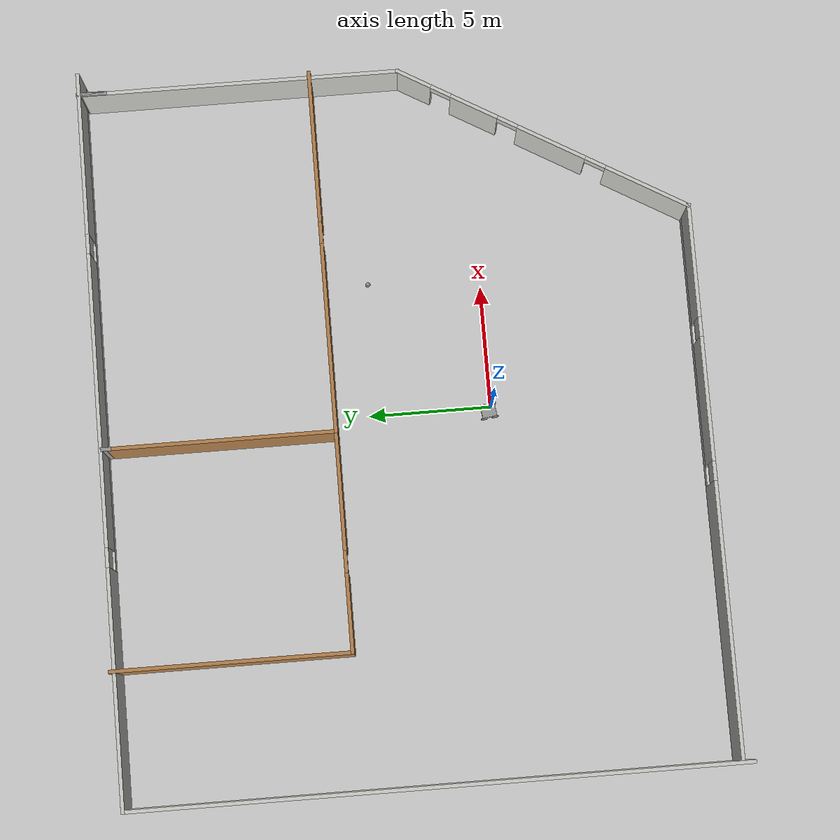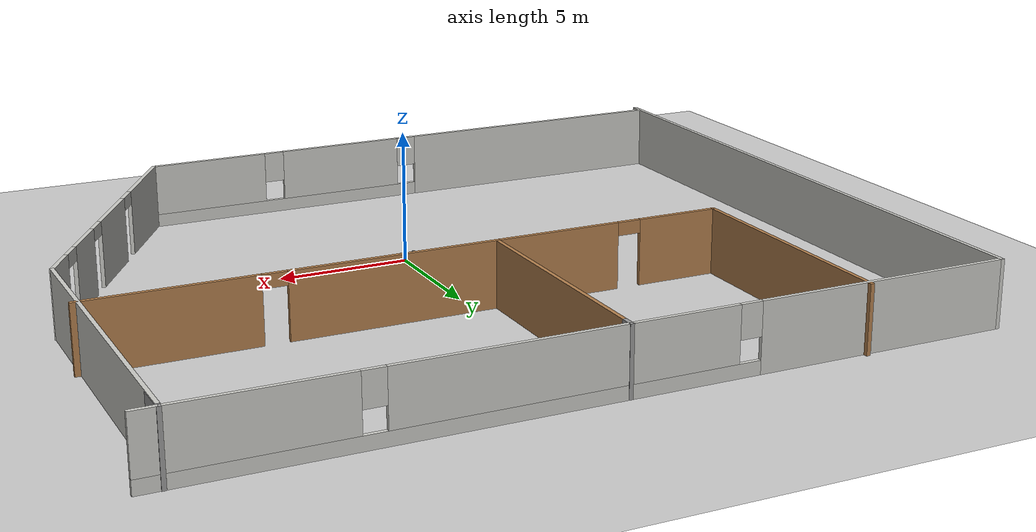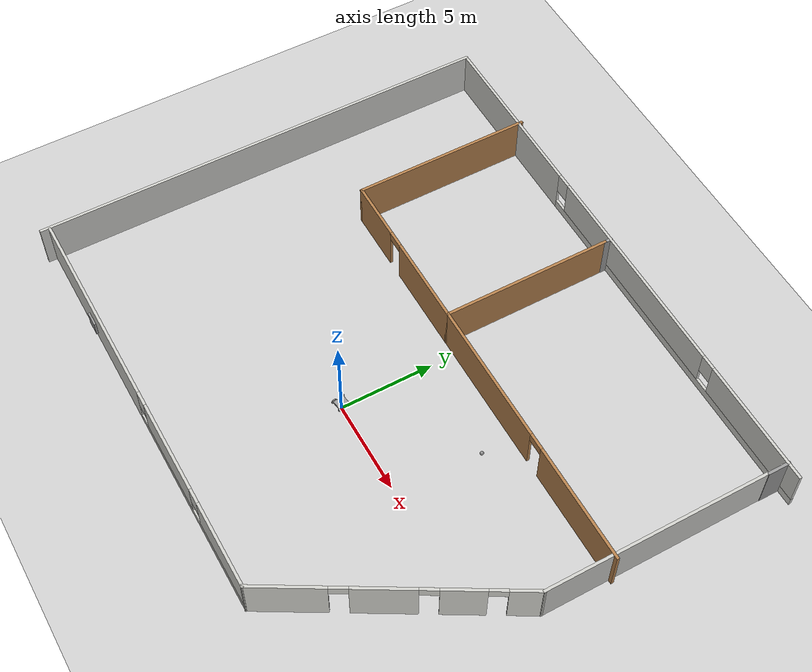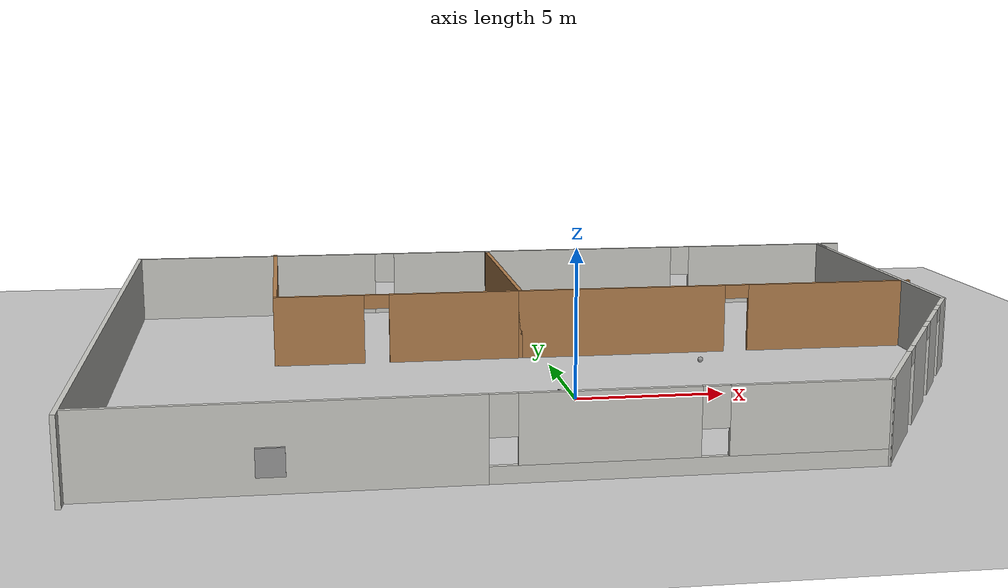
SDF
<sdf version="1.6">
 <world name="default">
  <plugin name="welcomeMessage" filename="libwelcome_message.so"/>
  <light name="sun" type="directional">
   <pose>0 0 10 0 -0 0</pose>
   <diffuse>0.8 0.8 0.8 1</diffuse>
   <specular>0.2 0.2 0.2 1</specular>
   <attenuation>
    <range>1000</range>
    <constant>0.9</constant>
    <linear>0.01</linear>
    <quadratic>0.001</quadratic>
   </attenuation>
   <direction>-0.5 0.1 -0.9</direction>
  </light>
  <model name="ground_plane">
   <static>1</static>
   <link name="link">
    <collision name="collision">
     <geometry><plane><normal>0 0 1</normal><size>100 100</size></plane></geometry>
     <surface><friction><ode><mu>100</mu><mu2>50</mu2></ode></friction></surface>
    </collision>
    <visual name="visual">
     <cast_shadows>0</cast_shadows>
     <geometry><plane><normal>0 0 1</normal><size>100 100</size></plane></geometry>
     <material>
      <script><uri>file://media/materials/scripts/gazebo.material</uri><name>Gazebo/Grey</name></script>
     </material>
    </visual>
   </link>
  </model>
  <gravity>0 0 -9.8</gravity>
  <magnetic_field>6e-06 2.3e-05 -4.2e-05</magnetic_field>
  <atmosphere type="adiabatic"/>
  <physics name="default_physics" default="0" type="ode">
   <max_step_size>0.001</max_step_size>
   <real_time_factor>1</real_time_factor>
   <real_time_update_rate>1000</real_time_update_rate>
  </physics>
  <scene><ambient>0.4 0.4 0.4 1</ambient><background>0.7 0.7 0.7 1</background><shadows>1</shadows></scene>
  <spherical_coordinates>
   <surface_model>EARTH_WGS84</surface_model>
   <latitude_deg>0</latitude_deg>
   <longitude_deg>0</longitude_deg>
   <elevation>0</elevation>
   <heading_deg>0</heading_deg>
  </spherical_coordinates>
  <model name="Building">
   <pose>-0.270887 3.4655 0 0 -0 0</pose>
   <link name="Wall_0">
    <pose>0 12.3455 0 0 -0 0</pose>
    <visual name="Wall_0_Visual_0">
     <pose>-10.1536 0 1.25 0 -0 0</pose>
     <geometry><box><size>9.69271 0.15 2.5</size></box></geometry>
     <material>
      <script><uri>file://media/materials/scripts/gazebo.material</uri><name>Gazebo/CeilingTiled</name></script>
      <ambient>1 1 1 1</ambient>
     </material>
     <meta><layer>0</layer></meta>
    </visual>
    <collision name="Wall_0_Collision_0">
     <geometry><box><size>9.69271 0.15 2.5</size></box></geometry>
     <pose>-10.1536 0 1.25 0 -0 0</pose>
    </collision>
    <visual name="Wall_0_Visual_1">
     <pose>4.84635 0 0.25 0 -0 0</pose>
     <geometry><box><size>20.3073 0.15 0.5</size></box></geometry>
     <material>
      <script><uri>file://media/materials/scripts/gazebo.material</uri><name>Gazebo/CeilingTiled</name></script>
      <ambient>1 1 1 1</ambient>
     </material>
     <meta><layer>0</layer></meta>
    </visual>
    <collision name="Wall_0_Collision_1">
     <geometry><box><size>20.3073 0.15 0.5</size></box></geometry>
     <pose>4.84635 0 0.25 0 -0 0</pose>
    </collision>
    <visual name="Wall_0_Visual_2">
     <pose>1.475 0 1.5 0 -0 0</pose>
     <geometry><box><size>11.9646 0.15 2</size></box></geometry>
     <material>
      <script><uri>file://media/materials/scripts/gazebo.material</uri><name>Gazebo/CeilingTiled</name></script>
      <ambient>1 1 1 1</ambient>
     </material>
     <meta><layer>0</layer></meta>
    </visual>
    <collision name="Wall_0_Collision_2">
     <geometry><box><size>11.9646 0.15 2</size></box></geometry>
     <pose>1.475 0 1.5 0 -0 0</pose>
    </collision>
    <visual name="Wall_0_Visual_3">
     <pose>11.6286 0 1.5 0 -0 0</pose>
     <geometry><box><size>6.74271 0.15 2</size></box></geometry>
     <material>
      <script><uri>file://media/materials/scripts/gazebo.material</uri><name>Gazebo/CeilingTiled</name></script>
      <ambient>1 1 1 1</ambient>
     </material>
     <meta><layer>0</layer></meta>
    </visual>
    <collision name="Wall_0_Collision_3">
     <geometry><box><size>6.74271 0.15 2</size></box></geometry>
     <pose>11.6286 0 1.5 0 -0 0</pose>
    </collision>
    <visual name="Wall_0_Visual_4">
     <pose>-4.9073 0 1.9 0 -0 0</pose>
     <geometry><box><size>0.8 0.15 1.2</size></box></geometry>
     <material>
      <script><uri>file://media/materials/scripts/gazebo.material</uri><name>Gazebo/CeilingTiled</name></script>
      <ambient>1 1 1 1</ambient>
     </material>
     <meta><layer>0</layer></meta>
    </visual>
    <collision name="Wall_0_Collision_4">
     <geometry><box><size>0.8 0.15 1.2</size></box></geometry>
     <pose>-4.9073 0 1.9 0 -0 0</pose>
    </collision>
    <visual name="Wall_0_Visual_5">
     <pose>7.85729 0 1.9 0 -0 0</pose>
     <geometry><box><size>0.8 0.15 1.2</size></box></geometry>
     <material>
      <script><uri>file://media/materials/scripts/gazebo.material</uri><name>Gazebo/CeilingTiled</name></script>
      <ambient>1 1 1 1</ambient>
     </material>
     <meta><layer>0</layer></meta>
    </visual>
    <collision name="Wall_0_Collision_5">
     <geometry><box><size>0.8 0.15 1.2</size></box></geometry>
     <pose>7.85729 0 1.9 0 -0 0</pose>
    </collision>
   </link>
   <link name="Wall_10">
    <collision name="Wall_10_Collision">
     <geometry><box><size>9.75 0.15 2.5</size></box></geometry>
     <pose>0 0 1.25 0 -0 0</pose>
    </collision>
    <visual name="Wall_10_Visual">
     <pose>0 0 1.25 0 -0 0</pose>
     <geometry><box><size>9.75 0.15 2.5</size></box></geometry>
     <material>
      <script><uri>file://media/materials/scripts/gazebo.material</uri><name>Gazebo/Wood</name></script>
      <ambient>1 1 1 1</ambient>
     </material>
     <meta><layer>0</layer></meta>
    </visual>
    <pose>-9.42075 7.70449 0 0 0 -1.5708</pose>
   </link>
   <link name="Wall_11">
    <pose>-4.99575 2.90449 0 0 -0 0</pose>
    <visual name="Wall_11_Visual_0">
     <pose>-2.88665 0 1.25 0 -0 0</pose>
     <geometry><box><size>3.22669 0.15 2.5</size></box></geometry>
     <material>
      <script><uri>file://media/materials/scripts/gazebo.material</uri><name>Gazebo/Wood</name></script>
      <ambient>1 1 1 1</ambient>
     </material>
     <meta><layer>0</layer></meta>
    </visual>
    <collision name="Wall_11_Collision_0">
     <geometry><box><size>3.22669 0.15 2.5</size></box></geometry>
     <pose>-2.88665 0 1.25 0 -0 0</pose>
    </collision>
    <visual name="Wall_11_Visual_1">
     <pose>2.06335 0 1.25 0 -0 0</pose>
     <geometry><box><size>4.87331 0.15 2.5</size></box></geometry>
     <material>
      <script><uri>file://media/materials/scripts/gazebo.material</uri><name>Gazebo/Wood</name></script>
      <ambient>1 1 1 1</ambient>
     </material>
     <meta><layer>0</layer></meta>
    </visual>
    <collision name="Wall_11_Collision_1">
     <geometry><box><size>4.87331 0.15 2.5</size></box></geometry>
     <pose>2.06335 0 1.25 0 -0 0</pose>
    </collision>
    <visual name="Wall_11_Visual_2">
     <pose>-0.823305 0 2.25 0 -0 0</pose>
     <geometry><box><size>0.9 0.15 0.5</size></box></geometry>
     <material>
      <script><uri>file://media/materials/scripts/gazebo.material</uri><name>Gazebo/Wood</name></script>
      <ambient>1 1 1 1</ambient>
     </material>
     <meta><layer>0</layer></meta>
    </visual>
    <collision name="Wall_11_Collision_2">
     <geometry><box><size>0.9 0.15 0.5</size></box></geometry>
     <pose>-0.823305 0 2.25 0 -0 0</pose>
    </collision>
   </link>
   <link name="Wall_12">
    <collision name="Wall_12_Collision">
     <geometry><box><size>9.25 0.15 2.5</size></box></geometry>
     <pose>0 0 1.25 0 -0 0</pose>
    </collision>
    <visual name="Wall_12_Visual">
     <pose>0 0 1.25 0 -0 0</pose>
     <geometry><box><size>9.25 0.15 2.5</size></box></geometry>
     <material>
      <script><uri>file://media/materials/scripts/gazebo.material</uri><name>Gazebo/Wood</name></script>
      <ambient>1 1 1 1</ambient>
     </material>
     <meta><layer>0</layer></meta>
    </visual>
    <pose>-0.570745 7.45449 0 0 -0 1.5708</pose>
   </link>
   <link name="Wall_13">
    <collision name="Wall_13_Collision">
     <geometry><box><size>0.5 0.15 2.5</size></box></geometry>
     <pose>0 0 1.25 0 -0 0</pose>
    </collision>
    <visual name="Wall_13_Visual">
     <pose>0 0 1.25 0 -0 0</pose>
     <geometry><box><size>0.5 0.15 2.5</size></box></geometry>
     <material>
      <script><uri>file://media/materials/scripts/gazebo.material</uri><name>Gazebo/Grey</name></script>
      <ambient>1 1 1 1</ambient>
     </material>
     <meta><layer>0</layer></meta>
    </visual>
    <pose>-0.570745 12.1795 0 0 -0 1.5708</pose>
   </link>
   <link name="Wall_15">
    <pose>6.85425 2.90449 0 0 -0 0</pose>
    <visual name="Wall_15_Visual_0">
     <pose>-3.61375 0 1.25 0 -0 0</pose>
     <geometry><box><size>7.77249 0.15 2.5</size></box></geometry>
     <material>
      <script><uri>file://media/materials/scripts/gazebo.material</uri><name>Gazebo/Wood</name></script>
      <ambient>1 1 1 1</ambient>
     </material>
     <meta><layer>0</layer></meta>
    </visual>
    <collision name="Wall_15_Collision_0">
     <geometry><box><size>7.77249 0.15 2.5</size></box></geometry>
     <pose>-3.61375 0 1.25 0 -0 0</pose>
    </collision>
    <visual name="Wall_15_Visual_1">
     <pose>4.33625 0 1.25 0 -0 0</pose>
     <geometry><box><size>6.32751 0.15 2.5</size></box></geometry>
     <material>
      <script><uri>file://media/materials/scripts/gazebo.material</uri><name>Gazebo/Wood</name></script>
      <ambient>1 1 1 1</ambient>
     </material>
     <meta><layer>0</layer></meta>
    </visual>
    <collision name="Wall_15_Collision_1">
     <geometry><box><size>6.32751 0.15 2.5</size></box></geometry>
     <pose>4.33625 0 1.25 0 -0 0</pose>
    </collision>
    <visual name="Wall_15_Visual_2">
     <pose>0.722492 0 2.25 0 -0 0</pose>
     <geometry><box><size>0.9 0.15 0.5</size></box></geometry>
     <material>
      <script><uri>file://media/materials/scripts/gazebo.material</uri><name>Gazebo/Wood</name></script>
      <ambient>1 1 1 1</ambient>
     </material>
     <meta><layer>0</layer></meta>
    </visual>
    <collision name="Wall_15_Collision_2">
     <geometry><box><size>0.9 0.15 0.5</size></box></geometry>
     <pose>0.722492 0 2.25 0 -0 0</pose>
    </collision>
   </link>
   <link name="Wall_2">
    <collision name="Wall_2_Collision">
     <geometry><box><size>25 0.15 2.5</size></box></geometry>
     <pose>0 0 1.25 0 -0 0</pose>
    </collision>
    <visual name="Wall_2_Visual">
     <pose>0 0 1.25 0 -0 0</pose>
     <geometry><box><size>25 0.15 2.5</size></box></geometry>
     <material>
      <script><uri>file://media/materials/scripts/gazebo.material</uri><name>Gazebo/CeilingTiled</name></script>
      <ambient>1 1 1 1</ambient>
     </material>
     <meta><layer>0</layer></meta>
    </visual>
    <pose>-14.925 -0.079493 0 0 0 -1.5708</pose>
   </link>
   <link name="Wall_4">
    <pose>-3.65035 -12.0603 0 0 -0 0</pose>
    <visual name="Wall_4_Visual_0">
     <pose>-5.67977 0 1.25 0 -0 0</pose>
     <geometry><box><size>11.1405 0.15 2.5</size></box></geometry>
     <material>
      <script><uri>file://media/materials/scripts/gazebo.material</uri><name>Gazebo/CeilingTiled</name></script>
      <ambient>1 1 1 1</ambient>
     </material>
     <meta><layer>0</layer></meta>
    </visual>
    <collision name="Wall_4_Collision_0">
     <geometry><box><size>11.1405 0.15 2.5</size></box></geometry>
     <pose>-5.67977 0 1.25 0 -0 0</pose>
    </collision>
    <visual name="Wall_4_Visual_1">
     <pose>5.57023 0 0.25 0 -0 0</pose>
     <geometry><box><size>11.3595 0.15 0.5</size></box></geometry>
     <material>
      <script><uri>file://media/materials/scripts/gazebo.material</uri><name>Gazebo/CeilingTiled</name></script>
      <ambient>1 1 1 1</ambient>
     </material>
     <meta><layer>0</layer></meta>
    </visual>
    <collision name="Wall_4_Collision_1">
     <geometry><box><size>11.3595 0.15 0.5</size></box></geometry>
     <pose>5.57023 0 0.25 0 -0 0</pose>
    </collision>
    <visual name="Wall_4_Visual_2">
     <pose>3.2238 0 1.5 0 -0 0</pose>
     <geometry><box><size>5.06667 0.15 2</size></box></geometry>
     <material>
      <script><uri>file://media/materials/scripts/gazebo.material</uri><name>Gazebo/CeilingTiled</name></script>
      <ambient>1 1 1 1</ambient>
     </material>
     <meta><layer>0</layer></meta>
    </visual>
    <collision name="Wall_4_Collision_2">
     <geometry><box><size>5.06667 0.15 2</size></box></geometry>
     <pose>3.2238 0 1.5 0 -0 0</pose>
    </collision>
    <visual name="Wall_4_Visual_3">
     <pose>8.90357 0 1.5 0 -0 0</pose>
     <geometry><box><size>4.69287 0.15 2</size></box></geometry>
     <material>
      <script><uri>file://media/materials/scripts/gazebo.material</uri><name>Gazebo/CeilingTiled</name></script>
      <ambient>1 1 1 1</ambient>
     </material>
     <meta><layer>0</layer></meta>
    </visual>
    <collision name="Wall_4_Collision_3">
     <geometry><box><size>4.69287 0.15 2</size></box></geometry>
     <pose>8.90357 0 1.5 0 -0 0</pose>
    </collision>
    <visual name="Wall_4_Visual_4">
     <pose>0.290462 0 1.9 0 -0 0</pose>
     <geometry><box><size>0.8 0.15 1.2</size></box></geometry>
     <material>
      <script><uri>file://media/materials/scripts/gazebo.material</uri><name>Gazebo/CeilingTiled</name></script>
      <ambient>1 1 1 1</ambient>
     </material>
     <meta><layer>0</layer></meta>
    </visual>
    <collision name="Wall_4_Collision_4">
     <geometry><box><size>0.8 0.15 1.2</size></box></geometry>
     <pose>0.290462 0 1.9 0 -0 0</pose>
    </collision>
    <visual name="Wall_4_Visual_5">
     <pose>6.15713 0 1.9 0 -0 0</pose>
     <geometry><box><size>0.8 0.15 1.2</size></box></geometry>
     <material>
      <script><uri>file://media/materials/scripts/gazebo.material</uri><name>Gazebo/CeilingTiled</name></script>
      <ambient>1 1 1 1</ambient>
     </material>
     <meta><layer>0</layer></meta>
    </visual>
    <collision name="Wall_4_Collision_5">
     <geometry><box><size>0.8 0.15 1.2</size></box></geometry>
     <pose>6.15713 0 1.9 0 -0 0</pose>
    </collision>
   </link>
   <link name="Wall_5">
    <pose>10.7996 -6.38784 0 0 -0 1.0472</pose>
    <visual name="Wall_5_Visual_0">
     <pose>-4.7333 0 1.25 0 -0 0</pose>
     <geometry><box><size>3.7834 0.15 2.5</size></box></geometry>
     <material>
      <script><uri>file://media/materials/scripts/gazebo.material</uri><name>Gazebo/CeilingTiled</name></script>
      <ambient>1 1 1 1</ambient>
     </material>
     <meta><layer>0</layer></meta>
    </visual>
    <collision name="Wall_5_Collision_0">
     <geometry><box><size>3.7834 0.15 2.5</size></box></geometry>
     <pose>-4.7333 0 1.25 0 -0 0</pose>
    </collision>
    <visual name="Wall_5_Visual_1">
     <pose>-0.413681 0 1.25 0 -0 0</pose>
     <geometry><box><size>3.05584 0.15 2.5</size></box></geometry>
     <material>
      <script><uri>file://media/materials/scripts/gazebo.material</uri><name>Gazebo/CeilingTiled</name></script>
      <ambient>1 1 1 1</ambient>
     </material>
     <meta><layer>0</layer></meta>
    </visual>
    <collision name="Wall_5_Collision_1">
     <geometry><box><size>3.05584 0.15 2.5</size></box></geometry>
     <pose>-0.413681 0 1.25 0 -0 0</pose>
    </collision>
    <visual name="Wall_5_Visual_2">
     <pose>3.07013 0 1.25 0 -0 0</pose>
     <geometry><box><size>2.11178 0.15 2.5</size></box></geometry>
     <material>
      <script><uri>file://media/materials/scripts/gazebo.material</uri><name>Gazebo/CeilingTiled</name></script>
      <ambient>1 1 1 1</ambient>
     </material>
     <meta><layer>0</layer></meta>
    </visual>
    <collision name="Wall_5_Collision_2">
     <geometry><box><size>2.11178 0.15 2.5</size></box></geometry>
     <pose>3.07013 0 1.25 0 -0 0</pose>
    </collision>
    <visual name="Wall_5_Visual_3">
     <pose>5.82551 0 1.25 0 -0 0</pose>
     <geometry><box><size>1.59898 0.15 2.5</size></box></geometry>
     <material>
      <script><uri>file://media/materials/scripts/gazebo.material</uri><name>Gazebo/CeilingTiled</name></script>
      <ambient>1 1 1 1</ambient>
     </material>
     <meta><layer>0</layer></meta>
    </visual>
    <collision name="Wall_5_Collision_3">
     <geometry><box><size>1.59898 0.15 2.5</size></box></geometry>
     <pose>5.82551 0 1.25 0 -0 0</pose>
    </collision>
    <visual name="Wall_5_Visual_4">
     <pose>-2.3916 0 2.25 0 -0 0</pose>
     <geometry><box><size>0.9 0.15 0.5</size></box></geometry>
     <material>
      <script><uri>file://media/materials/scripts/gazebo.material</uri><name>Gazebo/CeilingTiled</name></script>
      <ambient>1 1 1 1</ambient>
     </material>
     <meta><layer>0</layer></meta>
    </visual>
    <collision name="Wall_5_Collision_4">
     <geometry><box><size>0.9 0.15 0.5</size></box></geometry>
     <pose>-2.3916 0 2.25 0 -0 0</pose>
    </collision>
    <visual name="Wall_5_Visual_5">
     <pose>1.56424 0 2.25 0 -0 0</pose>
     <geometry><box><size>0.9 0.15 0.5</size></box></geometry>
     <material>
      <script><uri>file://media/materials/scripts/gazebo.material</uri><name>Gazebo/CeilingTiled</name></script>
      <ambient>1 1 1 1</ambient>
     </material>
     <meta><layer>0</layer></meta>
    </visual>
    <collision name="Wall_5_Collision_5">
     <geometry><box><size>0.9 0.15 0.5</size></box></geometry>
     <pose>1.56424 0 2.25 0 -0 0</pose>
    </collision>
    <visual name="Wall_5_Visual_6">
     <pose>4.57602 0 2.25 0 -0 0</pose>
     <geometry><box><size>0.9 0.15 0.5</size></box></geometry>
     <material>
      <script><uri>file://media/materials/scripts/gazebo.material</uri><name>Gazebo/CeilingTiled</name></script>
      <ambient>1 1 1 1</ambient>
     </material>
     <meta><layer>0</layer></meta>
    </visual>
    <collision name="Wall_5_Collision_6">
     <geometry><box><size>0.9 0.15 0.5</size></box></geometry>
     <pose>4.57602 0 2.25 0 -0 0</pose>
    </collision>
   </link>
   <link name="Wall_6">
    <collision name="Wall_6_Collision">
     <geometry><box><size>13 0.15 2.5</size></box></geometry>
     <pose>0 0 1.25 0 -0 0</pose>
    </collision>
    <visual name="Wall_6_Visual">
     <pose>0 0 1.25 0 -0 0</pose>
     <geometry><box><size>13 0.15 2.5</size></box></geometry>
     <material>
      <script><uri>file://media/materials/scripts/gazebo.material</uri><name>Gazebo/CeilingTiled</name></script>
      <ambient>1 1 1 1</ambient>
     </material>
     <meta><layer>0</layer></meta>
    </visual>
    <pose>14.0746 5.70962 0 0 -0 1.5708</pose>
   </link>
   <link name="Wall_8">
    <collision name="Wall_8_Collision">
     <geometry><box><size>1.25 0.15 2.5</size></box></geometry>
     <pose>0 0 1.25 0 -0 0</pose>
    </collision>
    <visual name="Wall_8_Visual">
     <pose>0 0 1.25 0 -0 0</pose>
     <geometry><box><size>1.25 0.15 2.5</size></box></geometry>
     <material>
      <script><uri>file://media/materials/scripts/gazebo.material</uri><name>Gazebo/Grey</name></script>
      <ambient>1 1 1 1</ambient>
     </material>
     <meta><layer>0</layer></meta>
    </visual>
    <pose>14.101 11.8196 0 0 0 -1.5708</pose>
   </link>
   <link name="Window_2">
    <collision name="Window_2_Collision">
     <geometry><box><size>0.8 0.17 0.8</size></box></geometry>
     <pose>0 0 0.4 0 -0 0</pose>
    </collision>
    <visual name="Window_2_Visual">
     <pose>0 0 0.4 0 -0 0</pose>
     <geometry><box><size>0.8 0.17 0.8</size></box></geometry>
     <material>
      <script><uri>file://media/materials/scripts/gazebo.material</uri><name>Gazebo/Grey</name></script>
     </material>
    </visual>
    <pose>-9.54655 -12.1551 0.5 0 -0 0</pose>
   </link>
   <static>1</static>
  </model>
  <model name="QuadWheelRobot">
   <link name="link_0">
    <inertial>
     <mass>1</mass>
     <inertia>
      <ixx>0.166667</ixx>
      <ixy>0</ixy>
      <ixz>0</ixz>
      <iyy>0.166667</iyy>
      <iyz>0</iyz>
      <izz>0.166667</izz>
     </inertia>
    </inertial>
    <visual name="visual">
     <geometry><box><size>0.5 0.6 0.1</size></box></geometry>
     <material>
      <lighting>1</lighting>
      <script><uri>file://media/materials/scripts/gazebo.material</uri><name>Gazebo/Grey</name></script>
      <shader type="pixel"><normal_map>__default__</normal_map></shader>
      <ambient>0.3 0.3 0.3 1</ambient>
      <diffuse>0.7 0.7 0.7 1</diffuse>
      <specular>0.01 0.01 0.01 1</specular>
      <emissive>0 0 0 1</emissive>
     </material>
    </visual>
    <collision name="collision">
     <geometry><box><size>0.5 0.6 0.1</size></box></geometry>
     <surface>
      <friction>
       <ode><mu>1</mu><mu2>1</mu2><fdir1>0 0 0</fdir1><slip1>0</slip1><slip2>0</slip2></ode>
       <torsional>
        <coefficient>1</coefficient>
        <patch_radius>0</patch_radius>
        <surface_radius>0</surface_radius>
        <use_patch_radius>1</use_patch_radius>
        <ode><slip>0</slip></ode>
       </torsional>
      </friction>
      <bounce><restitution_coefficient>0</restitution_coefficient><threshold>1e+06</threshold></bounce>
      <contact>
       <collide_without_contact>0</collide_without_contact>
       <collide_without_contact_bitmask>1</collide_without_contact_bitmask>
       <collide_bitmask>1</collide_bitmask>
       <ode>
        <soft_cfm>0</soft_cfm>
        <soft_erp>0.2</soft_erp>
        <kp>1e+13</kp>
        <kd>1</kd>
        <max_vel>0.01</max_vel>
        <min_depth>0</min_depth>
       </ode>
       <bullet>
        <split_impulse>1</split_impulse>
        <split_impulse_penetration_threshold>-0.01</split_impulse_penetration_threshold>
        <soft_cfm>0</soft_cfm>
        <soft_erp>0.2</soft_erp>
        <kp>1e+13</kp>
        <kd>1</kd>
       </bullet>
      </contact>
     </surface>
    </collision>
   </link>
   <link name="link_2">
    <pose>0.275029 0.219996 0 1.5707 0 1.5707</pose>
    <inertial>
     <mass>1</mass>
     <inertia><ixx>0.145833</ixx><ixy>0</ixy><ixz>0</ixz><iyy>0.145833</iyy><iyz>0</iyz><izz>0.125</izz></inertia>
    </inertial>
    <visual name="visual">
     <geometry><cylinder><radius>0.15</radius><length>0.05</length></cylinder></geometry>
     <material>
      <lighting>1</lighting>
      <script><uri>file://media/materials/scripts/gazebo.material</uri><name>Gazebo/Grey</name></script>
      <shader type="pixel"><normal_map>__default__</normal_map></shader>
      <ambient>0.3 0.3 0.3 1</ambient>
      <diffuse>0.7 0.7 0.7 1</diffuse>
      <specular>0.01 0.01 0.01 1</specular>
      <emissive>0 0 0 1</emissive>
     </material>
    </visual>
    <collision name="collision">
     <geometry><cylinder><radius>0.15</radius><length>0.05</length></cylinder></geometry>
     <surface>
      <friction>
       <ode><mu>1</mu><mu2>1</mu2><fdir1>0 0 0</fdir1><slip1>0</slip1><slip2>0</slip2></ode>
       <torsional>
        <coefficient>1</coefficient>
        <patch_radius>0</patch_radius>
        <surface_radius>0</surface_radius>
        <use_patch_radius>1</use_patch_radius>
        <ode><slip>0</slip></ode>
       </torsional>
      </friction>
      <bounce><restitution_coefficient>0</restitution_coefficient><threshold>1e+06</threshold></bounce>
      <contact>
       <collide_without_contact>0</collide_without_contact>
       <collide_without_contact_bitmask>1</collide_without_contact_bitmask>
       <collide_bitmask>1</collide_bitmask>
       <ode>
        <soft_cfm>0</soft_cfm>
        <soft_erp>0.2</soft_erp>
        <kp>1e+13</kp>
        <kd>1</kd>
        <max_vel>0.01</max_vel>
        <min_depth>0</min_depth>
       </ode>
       <bullet>
        <split_impulse>1</split_impulse>
        <split_impulse_penetration_threshold>-0.01</split_impulse_penetration_threshold>
        <soft_cfm>0</soft_cfm>
        <soft_erp>0.2</soft_erp>
        <kp>1e+13</kp>
        <kd>1</kd>
       </bullet>
      </contact>
     </surface>
    </collision>
   </link>
   <link name="link_2_clone">
    <pose>-0.275029 -0.219996 0 1.5707 0 1.5707</pose>
    <inertial>
     <mass>1</mass>
     <inertia><ixx>0.145833</ixx><ixy>0</ixy><ixz>0</ixz><iyy>0.145833</iyy><iyz>0</iyz><izz>0.125</izz></inertia>
    </inertial>
    <visual name="visual">
     <geometry><cylinder><radius>0.15</radius><length>0.05</length></cylinder></geometry>
     <material>
      <lighting>1</lighting>
      <script><uri>file://media/materials/scripts/gazebo.material</uri><name>Gazebo/Grey</name></script>
      <shader type="pixel"><normal_map>__default__</normal_map></shader>
      <ambient>0.3 0.3 0.3 1</ambient>
      <diffuse>0.7 0.7 0.7 1</diffuse>
      <specular>0.01 0.01 0.01 1</specular>
      <emissive>0 0 0 1</emissive>
     </material>
    </visual>
    <collision name="collision">
     <geometry><cylinder><radius>0.15</radius><length>0.05</length></cylinder></geometry>
     <surface>
      <friction>
       <ode><mu>1</mu><mu2>1</mu2><fdir1>0 0 0</fdir1><slip1>0</slip1><slip2>0</slip2></ode>
       <torsional>
        <coefficient>1</coefficient>
        <patch_radius>0</patch_radius>
        <surface_radius>0</surface_radius>
        <use_patch_radius>1</use_patch_radius>
        <ode><slip>0</slip></ode>
       </torsional>
      </friction>
      <bounce><restitution_coefficient>0</restitution_coefficient><threshold>1e+06</threshold></bounce>
      <contact>
       <collide_without_contact>0</collide_without_contact>
       <collide_without_contact_bitmask>1</collide_without_contact_bitmask>
       <collide_bitmask>1</collide_bitmask>
       <ode>
        <soft_cfm>0</soft_cfm>
        <soft_erp>0.2</soft_erp>
        <kp>1e+13</kp>
        <kd>1</kd>
        <max_vel>0.01</max_vel>
        <min_depth>0</min_depth>
       </ode>
       <bullet>
        <split_impulse>1</split_impulse>
        <split_impulse_penetration_threshold>-0.01</split_impulse_penetration_threshold>
        <soft_cfm>0</soft_cfm>
        <soft_erp>0.2</soft_erp>
        <kp>1e+13</kp>
        <kd>1</kd>
       </bullet>
      </contact>
     </surface>
    </collision>
   </link>
   <link name="link_2_clone_0">
    <pose>0.275029 -0.219996 0 1.5707 0 1.5707</pose>
    <inertial>
     <mass>1</mass>
     <inertia><ixx>0.145833</ixx><ixy>0</ixy><ixz>0</ixz><iyy>0.145833</iyy><iyz>0</iyz><izz>0.125</izz></inertia>
    </inertial>
    <visual name="visual">
     <geometry><cylinder><radius>0.15</radius><length>0.05</length></cylinder></geometry>
     <material>
      <lighting>1</lighting>
      <script><uri>file://media/materials/scripts/gazebo.material</uri><name>Gazebo/Grey</name></script>
      <shader type="pixel"><normal_map>__default__</normal_map></shader>
      <ambient>0.3 0.3 0.3 1</ambient>
      <diffuse>0.7 0.7 0.7 1</diffuse>
      <specular>0.01 0.01 0.01 1</specular>
      <emissive>0 0 0 1</emissive>
     </material>
    </visual>
    <collision name="collision">
     <geometry><cylinder><radius>0.15</radius><length>0.05</length></cylinder></geometry>
     <surface>
      <friction>
       <ode><mu>1</mu><mu2>1</mu2><fdir1>0 0 0</fdir1><slip1>0</slip1><slip2>0</slip2></ode>
       <torsional>
        <coefficient>1</coefficient>
        <patch_radius>0</patch_radius>
        <surface_radius>0</surface_radius>
        <use_patch_radius>1</use_patch_radius>
        <ode><slip>0</slip></ode>
       </torsional>
      </friction>
      <bounce><restitution_coefficient>0</restitution_coefficient><threshold>1e+06</threshold></bounce>
      <contact>
       <collide_without_contact>0</collide_without_contact>
       <collide_without_contact_bitmask>1</collide_without_contact_bitmask>
       <collide_bitmask>1</collide_bitmask>
       <ode>
        <soft_cfm>0</soft_cfm>
        <soft_erp>0.2</soft_erp>
        <kp>1e+13</kp>
        <kd>1</kd>
        <max_vel>0.01</max_vel>
        <min_depth>0</min_depth>
       </ode>
       <bullet>
        <split_impulse>1</split_impulse>
        <split_impulse_penetration_threshold>-0.01</split_impulse_penetration_threshold>
        <soft_cfm>0</soft_cfm>
        <soft_erp>0.2</soft_erp>
        <kp>1e+13</kp>
        <kd>1</kd>
       </bullet>
      </contact>
     </surface>
    </collision>
   </link>
   <link name="link_2_clone_1">
    <pose>-0.275029 0.219996 0 1.5707 0 1.5707</pose>
    <inertial>
     <mass>1</mass>
     <inertia><ixx>0.145833</ixx><ixy>0</ixy><ixz>0</ixz><iyy>0.145833</iyy><iyz>0</iyz><izz>0.125</izz></inertia>
    </inertial>
    <visual name="visual">
     <geometry><cylinder><radius>0.15</radius><length>0.05</length></cylinder></geometry>
     <material>
      <lighting>1</lighting>
      <script><uri>file://media/materials/scripts/gazebo.material</uri><name>Gazebo/Grey</name></script>
      <shader type="pixel"><normal_map>__default__</normal_map></shader>
      <ambient>0.3 0.3 0.3 1</ambient>
      <diffuse>0.7 0.7 0.7 1</diffuse>
      <specular>0.01 0.01 0.01 1</specular>
      <emissive>0 0 0 1</emissive>
     </material>
    </visual>
    <collision name="collision">
     <geometry><cylinder><radius>0.15</radius><length>0.05</length></cylinder></geometry>
     <surface>
      <friction>
       <ode><mu>1</mu><mu2>1</mu2><fdir1>0 0 0</fdir1><slip1>0</slip1><slip2>0</slip2></ode>
       <torsional>
        <coefficient>1</coefficient>
        <patch_radius>0</patch_radius>
        <surface_radius>0</surface_radius>
        <use_patch_radius>1</use_patch_radius>
        <ode><slip>0</slip></ode>
       </torsional>
      </friction>
      <bounce><restitution_coefficient>0</restitution_coefficient><threshold>1e+06</threshold></bounce>
      <contact>
       <collide_without_contact>0</collide_without_contact>
       <collide_without_contact_bitmask>1</collide_without_contact_bitmask>
       <collide_bitmask>1</collide_bitmask>
       <ode>
        <soft_cfm>0</soft_cfm>
        <soft_erp>0.2</soft_erp>
        <kp>1e+13</kp>
        <kd>1</kd>
        <max_vel>0.01</max_vel>
        <min_depth>0</min_depth>
       </ode>
       <bullet>
        <split_impulse>1</split_impulse>
        <split_impulse_penetration_threshold>-0.01</split_impulse_penetration_threshold>
        <soft_cfm>0</soft_cfm>
        <soft_erp>0.2</soft_erp>
        <kp>1e+13</kp>
        <kd>1</kd>
       </bullet>
      </contact>
     </surface>
    </collision>
   </link>
   <joint name="link_0_JOINT_0" type="revolute">
    <parent>link_0</parent>
    <child>link_2_clone_0</child>
    <axis>
     <xyz>0 0 1</xyz>
     <use_parent_model_frame>0</use_parent_model_frame>
     <limit>
      <lower>-1.79769e+308</lower>
      <upper>1.79769e+308</upper>
      <effort>-1</effort>
      <velocity>-1</velocity>
     </limit>
     <dynamics>
      <spring_reference>0</spring_reference>
      <spring_stiffness>0</spring_stiffness>
      <damping>0</damping>
     </dynamics>
    </axis>
    <physics>
     <ode><limit><cfm>0</cfm><erp>0.2</erp></limit><suspension><cfm>0</cfm><erp>0.2</erp></suspension></ode>
    </physics>
   </joint>
   <joint name="link_0_JOINT_1" type="revolute">
    <parent>link_0</parent>
    <child>link_2</child>
    <axis>
     <xyz>0 0 1</xyz>
     <use_parent_model_frame>0</use_parent_model_frame>
     <limit>
      <lower>-1.79769e+308</lower>
      <upper>1.79769e+308</upper>
      <effort>-1</effort>
      <velocity>-1</velocity>
     </limit>
     <dynamics>
      <spring_reference>0</spring_reference>
      <spring_stiffness>0</spring_stiffness>
      <damping>0</damping>
     </dynamics>
    </axis>
    <physics>
     <ode><limit><cfm>0</cfm><erp>0.2</erp></limit><suspension><cfm>0</cfm><erp>0.2</erp></suspension></ode>
    </physics>
   </joint>
   <joint name="link_0_JOINT_2" type="revolute">
    <parent>link_0</parent>
    <child>link_2_clone_1</child>
    <axis>
     <xyz>0 0 1</xyz>
     <use_parent_model_frame>0</use_parent_model_frame>
     <limit>
      <lower>-1.79769e+308</lower>
      <upper>1.79769e+308</upper>
      <effort>-1</effort>
      <velocity>-1</velocity>
     </limit>
     <dynamics>
      <spring_reference>0</spring_reference>
      <spring_stiffness>0</spring_stiffness>
      <damping>0</damping>
     </dynamics>
    </axis>
    <physics>
     <ode><limit><cfm>0</cfm><erp>0.2</erp></limit><suspension><cfm>0</cfm><erp>0.2</erp></suspension></ode>
    </physics>
   </joint>
   <joint name="link_0_JOINT_3" type="revolute">
    <parent>link_0</parent>
    <child>link_2_clone</child>
    <axis>
     <xyz>0 0 1</xyz>
     <use_parent_model_frame>0</use_parent_model_frame>
     <limit>
      <lower>-1.79769e+308</lower>
      <upper>1.79769e+308</upper>
      <effort>-1</effort>
      <velocity>-1</velocity>
     </limit>
     <dynamics>
      <spring_reference>0</spring_reference>
      <spring_stiffness>0</spring_stiffness>
      <damping>0</damping>
     </dynamics>
    </axis>
    <physics>
     <ode><limit><cfm>0</cfm><erp>0.2</erp></limit><suspension><cfm>0</cfm><erp>0.2</erp></suspension></ode>
    </physics>
   </joint>
   <static>0</static>
   <pose>-0.183376 0.094231 0.15 1.1e-05 0 0.133384</pose>
  </model>
  <model name="my_ball_clone">
   <link name="link_0">
    <inertial>
     <mass>1</mass>
     <inertia><ixx>0.1</ixx><ixy>0</ixy><ixz>0</ixz><iyy>0.1</iyy><iyz>0</iyz><izz>0.1</izz></inertia>
    </inertial>
    <visual name="visual">
     <geometry><sphere><radius>0.1</radius></sphere></geometry>
     <material>
      <lighting>1</lighting>
      <script><uri>file://media/materials/scripts/gazebo.material</uri><name>Gazebo/Grey</name></script>
      <shader type="pixel"><normal_map>__default__</normal_map></shader>
      <ambient>1 1 1 1</ambient>
      <diffuse>1 1 1 1</diffuse>
      <specular>1 1 1 1</specular>
      <emissive>1 1 1 1</emissive>
     </material>
    </visual>
    <collision name="collision">
     <geometry><sphere><radius>0.1</radius></sphere></geometry>
     <surface>
      <friction>
       <ode><mu>1</mu><mu2>1</mu2><fdir1>0 0 0</fdir1><slip1>0</slip1><slip2>0</slip2></ode>
       <torsional>
        <coefficient>1</coefficient>
        <patch_radius>0</patch_radius>
        <surface_radius>0</surface_radius>
        <use_patch_radius>1</use_patch_radius>
        <ode><slip>0</slip></ode>
       </torsional>
      </friction>
      <bounce><restitution_coefficient>0</restitution_coefficient><threshold>1e+06</threshold></bounce>
      <contact>
       <collide_without_contact>0</collide_without_contact>
       <collide_without_contact_bitmask>1</collide_without_contact_bitmask>
       <collide_bitmask>1</collide_bitmask>
       <ode>
        <soft_cfm>0</soft_cfm>
        <soft_erp>0.2</soft_erp>
        <kp>1e+13</kp>
        <kd>1</kd>
        <max_vel>0.01</max_vel>
        <min_depth>0</min_depth>
       </ode>
       <bullet>
        <split_impulse>1</split_impulse>
        <split_impulse_penetration_threshold>-0.01</split_impulse_penetration_threshold>
        <soft_cfm>0</soft_cfm>
        <soft_erp>0.2</soft_erp>
        <kp>1e+13</kp>
        <kd>1</kd>
       </bullet>
      </contact>
     </surface>
    </collision>
   </link>
   <static>0</static>
   <pose>5.50028 4.6356 0.1 0 -0 0</pose>
  </model>
 </world>
</sdf>
